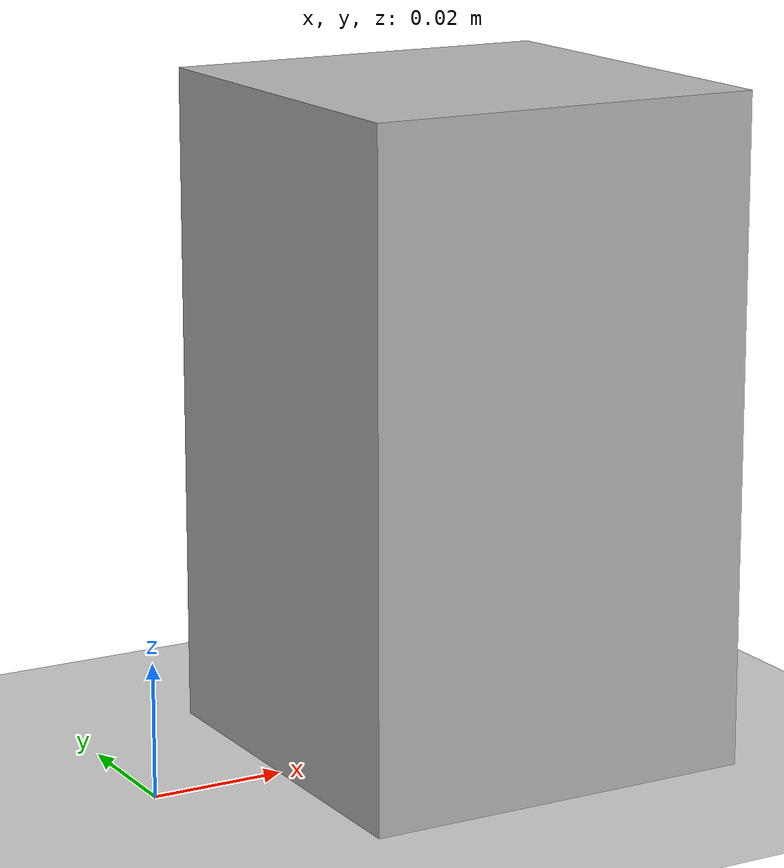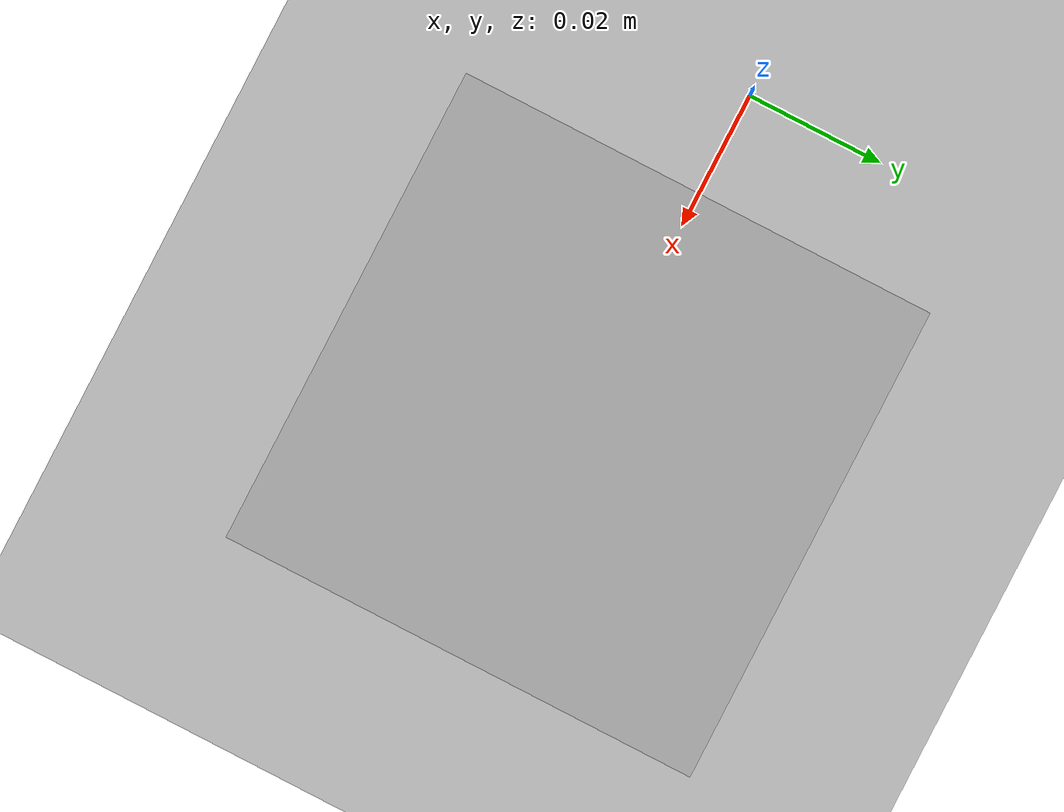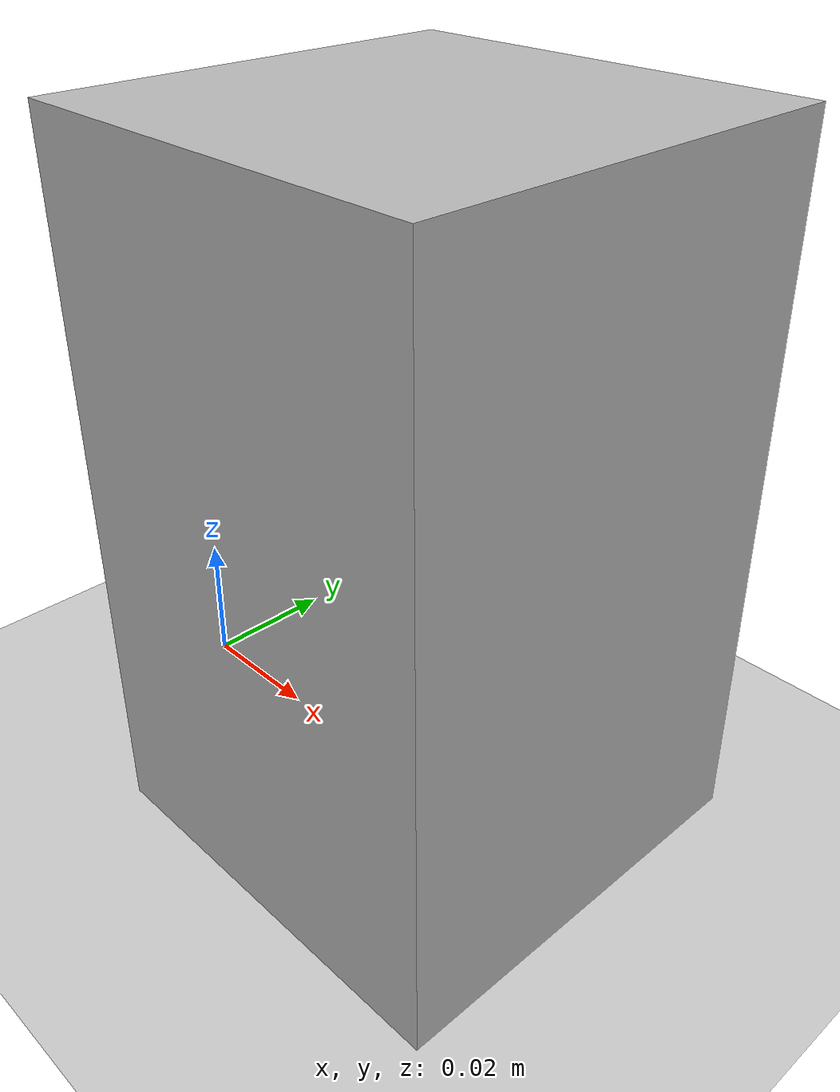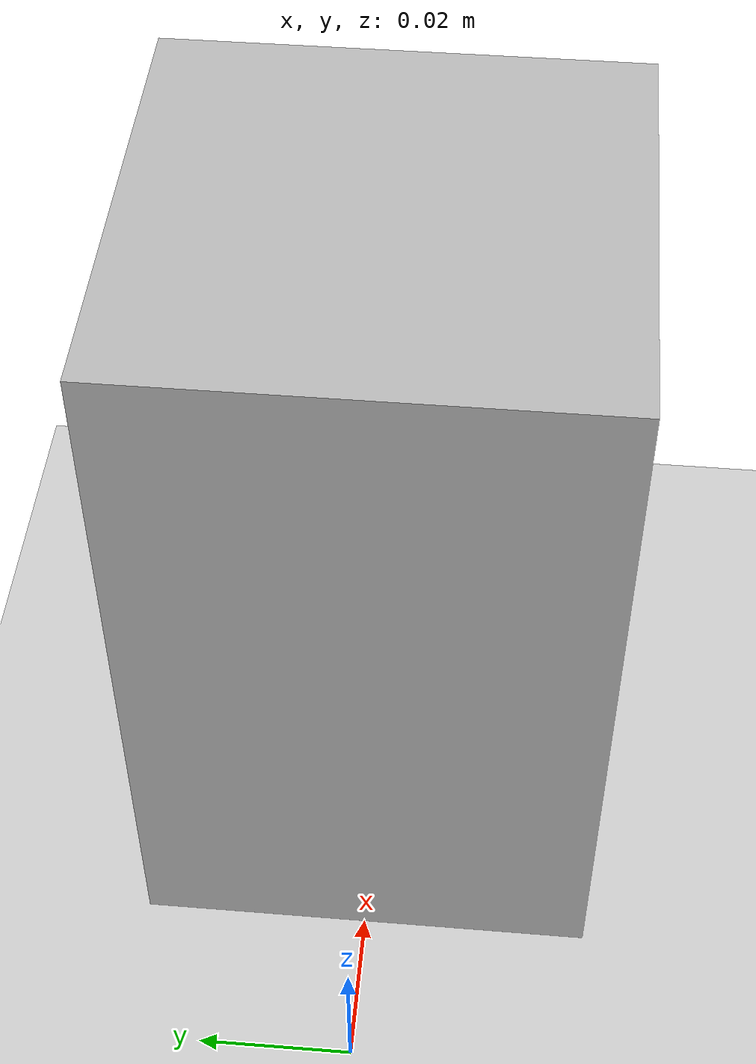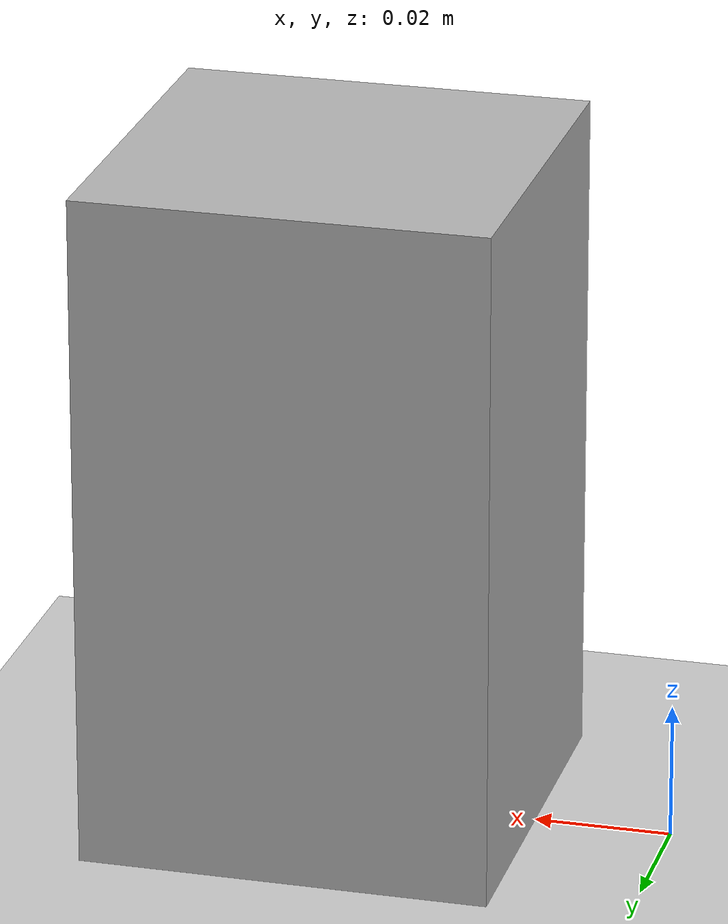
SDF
<?xml version="1.0" ?>
<sdf version="1.9">
  <world name="robot_test">
  <scene>
    <ambient>0.75 0.75 0.75 1</ambient>
    <background>0.85 0.88 0.92 1</background>
    <shadows>true</shadows>
  </scene>

  <light name="sun" type="directional">
    <cast_shadows>true</cast_shadows>
    <pose>0 0 3 0 0 0</pose>
    <diffuse>1 1 1 1</diffuse>
    <specular>0.3 0.3 0.3 1</specular>
    <direction>-0.4 -0.5 -1</direction>
  </light>
    <!-- Physics -->
    <physics name="1ms" type="ignored">
      <max_step_size>0.001</max_step_size>
      <real_time_factor>1</real_time_factor>
      <real_time_update_rate>1000</real_time_update_rate>
    </physics>

    <!-- Ground -->
    <model name="ground">
      <static>true</static>

      <link name="link">

        <collision name="collision">
          <geometry>
            <plane>
              <normal>0 0 1</normal>
              <size>5 5</size>
            </plane>
          </geometry>
        </collision>

        <visual name="visual">
          <geometry>
            <plane>
              <normal>0 0 1</normal>
              <size>5 5</size>
            </plane>
          </geometry>
        </visual>

      </link>
    </model>

    <!-- Test object -->
    <model name="test_object">
      <pose>0.05 0 0.05 0 0 0</pose>

      <link name="link">

        <inertial>
          <mass>0.1</mass>
          <inertia>
            <ixx>0.0001</ixx>
            <iyy>0.0001</iyy>
            <izz>0.0001</izz>
          </inertia>
        </inertial>

        <collision name="collision">
          <geometry>
            <box>
              <size>0.06 0.06 0.10</size>
            </box>
          </geometry>
        </collision>

        <visual name="visual">
          <geometry>
            <box>
              <size>0.06 0.06 0.10</size>
            </box>
          </geometry>
        </visual>

      </link>
    </model>

  </world>
</sdf>
